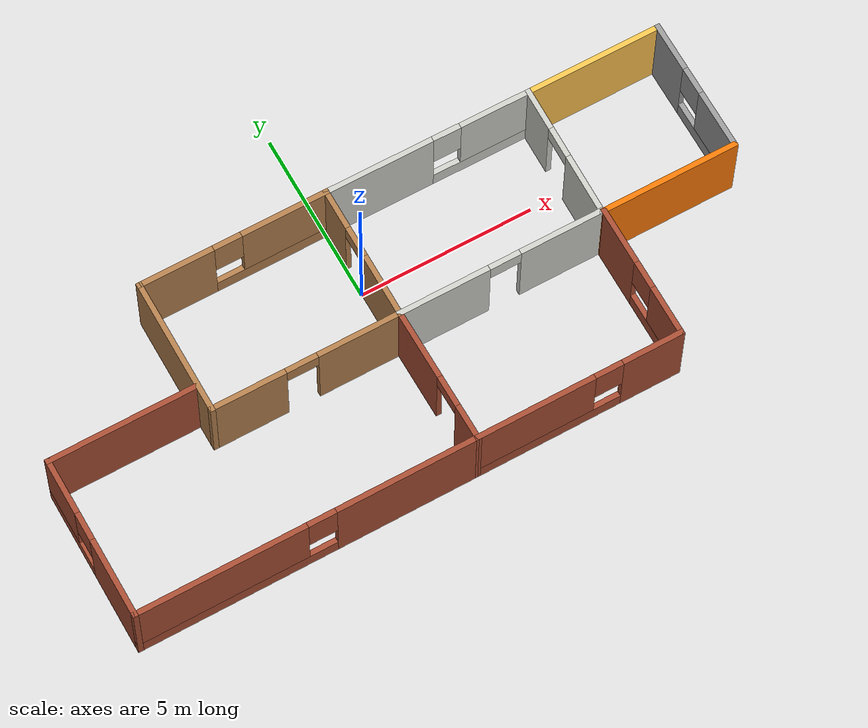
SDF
<?xml version='1.0'?>
<sdf version='1.6'>
  <model name='Untitled'>
    <pose frame=''>0.1832 -1.88357 0 0 -0 0</pose>
    <link name='Wall_0'>
      <collision name='Wall_0_Collision'>
        <geometry>
          <box>
            <size>4 0.15 2.5</size>
          </box>
        </geometry>
        <pose frame=''>0 0 1.25 0 -0 0</pose>
      </collision>
      <visual name='Wall_0_Visual'>
        <pose frame=''>0 0 1.25 0 -0 0</pose>
        <geometry>
          <box>
            <size>4 0.15 2.5</size>
          </box>
        </geometry>
        <material>
          <script>
            <uri>file://media/materials/scripts/gazebo.material</uri>
            <name>Gazebo/Wood</name>
          </script>
          <ambient>1 1 1 1</ambient>
        </material>
        <meta>
          <layer>0</layer>
        </meta>
      </visual>
      <pose frame=''>-5.4532 1.93857 0 0 -0 1.5708</pose>
    </link>
    <link name='Wall_1'>
      <pose frame=''>-2.7782 3.86357 0 0 -0 0</pose>
      <visual name='Wall_1_Visual_0'>
        <pose frame=''>-1.66344 0 1.25 0 -0 0</pose>
        <geometry>
          <box>
            <size>2.17311 0.15 2.5</size>
          </box>
        </geometry>
        <material>
          <script>
            <uri>file://media/materials/scripts/gazebo.material</uri>
            <name>Gazebo/Wood</name>
          </script>
          <ambient>1 1 1 1</ambient>
        </material>
        <meta>
          <layer>0</layer>
        </meta>
      </visual>
      <collision name='Wall_1_Collision_0'>
        <geometry>
          <box>
            <size>2.17311 0.15 2.5</size>
          </box>
        </geometry>
        <pose frame=''>-1.66344 0 1.25 0 -0 0</pose>
      </collision>
      <visual name='Wall_1_Visual_1'>
        <pose frame=''>1.08656 0 0.25 0 -0 0</pose>
        <geometry>
          <box>
            <size>3.32689 0.15 0.5</size>
          </box>
        </geometry>
        <material>
          <script>
            <uri>file://media/materials/scripts/gazebo.material</uri>
            <name>Gazebo/Wood</name>
          </script>
          <ambient>1 1 1 1</ambient>
        </material>
        <meta>
          <layer>0</layer>
        </meta>
      </visual>
      <collision name='Wall_1_Collision_1'>
        <geometry>
          <box>
            <size>3.32689 0.15 0.5</size>
          </box>
        </geometry>
        <pose frame=''>1.08656 0 0.25 0 -0 0</pose>
      </collision>
      <visual name='Wall_1_Visual_2'>
        <pose frame=''>1.48656 0 1.5 0 -0 0</pose>
        <geometry>
          <box>
            <size>2.52689 0.15 2</size>
          </box>
        </geometry>
        <material>
          <script>
            <uri>file://media/materials/scripts/gazebo.material</uri>
            <name>Gazebo/Wood</name>
          </script>
          <ambient>1 1 1 1</ambient>
        </material>
        <meta>
          <layer>0</layer>
        </meta>
      </visual>
      <collision name='Wall_1_Collision_2'>
        <geometry>
          <box>
            <size>2.52689 0.15 2</size>
          </box>
        </geometry>
        <pose frame=''>1.48656 0 1.5 0 -0 0</pose>
      </collision>
      <visual name='Wall_1_Visual_3'>
        <pose frame=''>-0.176886 0 1.9 0 -0 0</pose>
        <geometry>
          <box>
            <size>0.8 0.15 1.2</size>
          </box>
        </geometry>
        <material>
          <script>
            <uri>file://media/materials/scripts/gazebo.material</uri>
            <name>Gazebo/Wood</name>
          </script>
          <ambient>1 1 1 1</ambient>
        </material>
        <meta>
          <layer>0</layer>
        </meta>
      </visual>
      <collision name='Wall_1_Collision_3'>
        <geometry>
          <box>
            <size>0.8 0.15 1.2</size>
          </box>
        </geometry>
        <pose frame=''>-0.176886 0 1.9 0 -0 0</pose>
      </collision>
    </link>
    <link name='Wall_13'>
      <pose frame=''>2.8218 0.013569 0 0 -0 0</pose>
      <visual name='Wall_13_Visual_0'>
        <pose frame=''>-1.67586 0 1.25 0 -0 0</pose>
        <geometry>
          <box>
            <size>2.64829 0.15 2.5</size>
          </box>
        </geometry>
        <material>
          <script>
            <uri>file://media/materials/scripts/gazebo.material</uri>
            <name>Gazebo/CeilingTiled</name>
          </script>
          <ambient>0.996078 0.47451 0.0196078 1</ambient>
        </material>
        <meta>
          <layer>0</layer>
        </meta>
      </visual>
      <collision name='Wall_13_Collision_0'>
        <geometry>
          <box>
            <size>2.64829 0.15 2.5</size>
          </box>
        </geometry>
        <pose frame=''>-1.67586 0 1.25 0 -0 0</pose>
      </collision>
      <visual name='Wall_13_Visual_1'>
        <pose frame=''>1.77414 0 1.25 0 -0 0</pose>
        <geometry>
          <box>
            <size>2.45171 0.15 2.5</size>
          </box>
        </geometry>
        <material>
          <script>
            <uri>file://media/materials/scripts/gazebo.material</uri>
            <name>Gazebo/CeilingTiled</name>
          </script>
          <ambient>0.996078 0.47451 0.0196078 1</ambient>
        </material>
        <meta>
          <layer>0</layer>
        </meta>
      </visual>
      <collision name='Wall_13_Collision_1'>
        <geometry>
          <box>
            <size>2.45171 0.15 2.5</size>
          </box>
        </geometry>
        <pose frame=''>1.77414 0 1.25 0 -0 0</pose>
      </collision>
      <visual name='Wall_13_Visual_2'>
        <pose frame=''>0.098288 0 2.25 0 -0 0</pose>
        <geometry>
          <box>
            <size>0.9 0.15 0.5</size>
          </box>
        </geometry>
        <material>
          <script>
            <uri>file://media/materials/scripts/gazebo.material</uri>
            <name>Gazebo/CeilingTiled</name>
          </script>
          <ambient>0.996078 0.47451 0.0196078 1</ambient>
        </material>
        <meta>
          <layer>0</layer>
        </meta>
      </visual>
      <collision name='Wall_13_Collision_2'>
        <geometry>
          <box>
            <size>0.9 0.15 0.5</size>
          </box>
        </geometry>
        <pose frame=''>0.098288 0 2.25 0 -0 0</pose>
      </collision>
    </link>
    <link name='Wall_14'>
      <pose frame=''>5.7734 1.92534 0 0 -0 1.55688</pose>
      <visual name='Wall_14_Visual_0'>
        <pose frame=''>-1.0801 0 1.25 0 -0 0</pose>
        <geometry>
          <box>
            <size>1.81371 0.15 2.5</size>
          </box>
        </geometry>
        <material>
          <script>
            <uri>file://media/materials/scripts/gazebo.material</uri>
            <name>Gazebo/CeilingTiled</name>
          </script>
          <ambient>1 1 1 1</ambient>
        </material>
        <meta>
          <layer>0</layer>
        </meta>
      </visual>
      <collision name='Wall_14_Collision_0'>
        <geometry>
          <box>
            <size>1.81371 0.15 2.5</size>
          </box>
        </geometry>
        <pose frame=''>-1.0801 0 1.25 0 -0 0</pose>
      </collision>
      <visual name='Wall_14_Visual_1'>
        <pose frame=''>1.35686 0 1.25 0 -0 0</pose>
        <geometry>
          <box>
            <size>1.26021 0.15 2.5</size>
          </box>
        </geometry>
        <material>
          <script>
            <uri>file://media/materials/scripts/gazebo.material</uri>
            <name>Gazebo/CeilingTiled</name>
          </script>
          <ambient>1 1 1 1</ambient>
        </material>
        <meta>
          <layer>0</layer>
        </meta>
      </visual>
      <collision name='Wall_14_Collision_1'>
        <geometry>
          <box>
            <size>1.26021 0.15 2.5</size>
          </box>
        </geometry>
        <pose frame=''>1.35686 0 1.25 0 -0 0</pose>
      </collision>
      <visual name='Wall_14_Visual_2'>
        <pose frame=''>0.276753 0 2.25 0 -0 0</pose>
        <geometry>
          <box>
            <size>0.9 0.15 0.5</size>
          </box>
        </geometry>
        <material>
          <script>
            <uri>file://media/materials/scripts/gazebo.material</uri>
            <name>Gazebo/CeilingTiled</name>
          </script>
          <ambient>1 1 1 1</ambient>
        </material>
        <meta>
          <layer>0</layer>
        </meta>
      </visual>
      <collision name='Wall_14_Collision_2'>
        <geometry>
          <box>
            <size>0.9 0.15 0.5</size>
          </box>
        </geometry>
        <pose frame=''>0.276753 0 2.25 0 -0 0</pose>
      </collision>
    </link>
    <link name='Wall_15'>
      <collision name='Wall_15_Collision'>
        <geometry>
          <box>
            <size>4 0.15 2.5</size>
          </box>
        </geometry>
        <pose frame=''>0 0 1.25 0 -0 0</pose>
      </collision>
      <visual name='Wall_15_Visual'>
        <pose frame=''>0 0 1.25 0 -0 0</pose>
        <geometry>
          <box>
            <size>4 0.15 2.5</size>
          </box>
        </geometry>
        <material>
          <script>
            <uri>file://media/materials/scripts/gazebo.material</uri>
            <name>Gazebo/Grey</name>
          </script>
          <ambient>1 0.764706 0.305882 1</ambient>
        </material>
        <meta>
          <layer>0</layer>
        </meta>
      </visual>
      <pose frame=''>7.725 3.83712 0 0 -0 0</pose>
    </link>
    <link name='Wall_16'>
      <pose frame=''>9.65 1.91212 0 0 0 -1.5708</pose>
      <visual name='Wall_16_Visual_0'>
        <pose frame=''>-1.27486 0 1.25 0 -0 0</pose>
        <geometry>
          <box>
            <size>1.45027 0.15 2.5</size>
          </box>
        </geometry>
        <material>
          <script>
            <uri>file://media/materials/scripts/gazebo.material</uri>
            <name>Gazebo/Grey</name>
          </script>
          <ambient>1 1 1 1</ambient>
        </material>
        <meta>
          <layer>0</layer>
        </meta>
      </visual>
      <collision name='Wall_16_Collision_0'>
        <geometry>
          <box>
            <size>1.45027 0.15 2.5</size>
          </box>
        </geometry>
        <pose frame=''>-1.27486 0 1.25 0 -0 0</pose>
      </collision>
      <visual name='Wall_16_Visual_1'>
        <pose frame=''>0.725137 0 0.25 0 -0 0</pose>
        <geometry>
          <box>
            <size>2.54973 0.15 0.5</size>
          </box>
        </geometry>
        <material>
          <script>
            <uri>file://media/materials/scripts/gazebo.material</uri>
            <name>Gazebo/Grey</name>
          </script>
          <ambient>1 1 1 1</ambient>
        </material>
        <meta>
          <layer>0</layer>
        </meta>
      </visual>
      <collision name='Wall_16_Collision_1'>
        <geometry>
          <box>
            <size>2.54973 0.15 0.5</size>
          </box>
        </geometry>
        <pose frame=''>0.725137 0 0.25 0 -0 0</pose>
      </collision>
      <visual name='Wall_16_Visual_2'>
        <pose frame=''>1.12514 0 1.5 0 -0 0</pose>
        <geometry>
          <box>
            <size>1.74973 0.15 2</size>
          </box>
        </geometry>
        <material>
          <script>
            <uri>file://media/materials/scripts/gazebo.material</uri>
            <name>Gazebo/Grey</name>
          </script>
          <ambient>1 1 1 1</ambient>
        </material>
        <meta>
          <layer>0</layer>
        </meta>
      </visual>
      <collision name='Wall_16_Collision_2'>
        <geometry>
          <box>
            <size>1.74973 0.15 2</size>
          </box>
        </geometry>
        <pose frame=''>1.12514 0 1.5 0 -0 0</pose>
      </collision>
      <visual name='Wall_16_Visual_3'>
        <pose frame=''>-0.149727 0 1.9 0 -0 0</pose>
        <geometry>
          <box>
            <size>0.8 0.15 1.2</size>
          </box>
        </geometry>
        <material>
          <script>
            <uri>file://media/materials/scripts/gazebo.material</uri>
            <name>Gazebo/Grey</name>
          </script>
          <ambient>1 1 1 1</ambient>
        </material>
        <meta>
          <layer>0</layer>
        </meta>
      </visual>
      <collision name='Wall_16_Collision_3'>
        <geometry>
          <box>
            <size>0.8 0.15 1.2</size>
          </box>
        </geometry>
        <pose frame=''>-0.149727 0 1.9 0 -0 0</pose>
      </collision>
    </link>
    <link name='Wall_17'>
      <collision name='Wall_17_Collision'>
        <geometry>
          <box>
            <size>4 0.15 2.5</size>
          </box>
        </geometry>
        <pose frame=''>0 0 1.25 0 -0 0</pose>
      </collision>
      <visual name='Wall_17_Visual'>
        <pose frame=''>0 0 1.25 0 -0 0</pose>
        <geometry>
          <box>
            <size>4 0.15 2.5</size>
          </box>
        </geometry>
        <material>
          <script>
            <uri>file://media/materials/scripts/gazebo.material</uri>
            <name>Gazebo/Grey</name>
          </script>
          <ambient>0.996078 0.47451 0.0196078 1</ambient>
        </material>
        <meta>
          <layer>0</layer>
        </meta>
      </visual>
      <pose frame=''>7.725 -0.012882 0 0 -0 3.14159</pose>
    </link>
    <link name='Wall_18'>
      <pose frame=''>5.8 -1.93788 0 0 0 -1.5708</pose>
      <visual name='Wall_18_Visual_0'>
        <pose frame=''>-1.14124 0 1.25 0 -0 0</pose>
        <geometry>
          <box>
            <size>1.71752 0.15 2.5</size>
          </box>
        </geometry>
        <material>
          <script>
            <uri>file://media/materials/scripts/gazebo.material</uri>
            <name>Gazebo/Bricks</name>
          </script>
          <ambient>1 1 1 1</ambient>
        </material>
        <meta>
          <layer>0</layer>
        </meta>
      </visual>
      <collision name='Wall_18_Collision_0'>
        <geometry>
          <box>
            <size>1.71752 0.15 2.5</size>
          </box>
        </geometry>
        <pose frame=''>-1.14124 0 1.25 0 -0 0</pose>
      </collision>
      <visual name='Wall_18_Visual_1'>
        <pose frame=''>0.858761 0 0.25 0 -0 0</pose>
        <geometry>
          <box>
            <size>2.28248 0.15 0.5</size>
          </box>
        </geometry>
        <material>
          <script>
            <uri>file://media/materials/scripts/gazebo.material</uri>
            <name>Gazebo/Bricks</name>
          </script>
          <ambient>1 1 1 1</ambient>
        </material>
        <meta>
          <layer>0</layer>
        </meta>
      </visual>
      <collision name='Wall_18_Collision_1'>
        <geometry>
          <box>
            <size>2.28248 0.15 0.5</size>
          </box>
        </geometry>
        <pose frame=''>0.858761 0 0.25 0 -0 0</pose>
      </collision>
      <visual name='Wall_18_Visual_2'>
        <pose frame=''>1.25876 0 1.5 0 -0 0</pose>
        <geometry>
          <box>
            <size>1.48248 0.15 2</size>
          </box>
        </geometry>
        <material>
          <script>
            <uri>file://media/materials/scripts/gazebo.material</uri>
            <name>Gazebo/Bricks</name>
          </script>
          <ambient>1 1 1 1</ambient>
        </material>
        <meta>
          <layer>0</layer>
        </meta>
      </visual>
      <collision name='Wall_18_Collision_2'>
        <geometry>
          <box>
            <size>1.48248 0.15 2</size>
          </box>
        </geometry>
        <pose frame=''>1.25876 0 1.5 0 -0 0</pose>
      </collision>
      <visual name='Wall_18_Visual_3'>
        <pose frame=''>0.117521 0 1.9 0 -0 0</pose>
        <geometry>
          <box>
            <size>0.8 0.15 1.2</size>
          </box>
        </geometry>
        <material>
          <script>
            <uri>file://media/materials/scripts/gazebo.material</uri>
            <name>Gazebo/Bricks</name>
          </script>
          <ambient>1 1 1 1</ambient>
        </material>
        <meta>
          <layer>0</layer>
        </meta>
      </visual>
      <collision name='Wall_18_Collision_3'>
        <geometry>
          <box>
            <size>0.8 0.15 1.2</size>
          </box>
        </geometry>
        <pose frame=''>0.117521 0 1.9 0 -0 0</pose>
      </collision>
    </link>
    <link name='Wall_19'>
      <pose frame=''>2.875 -3.86288 0 0 -0 3.14159</pose>
      <visual name='Wall_19_Visual_0'>
        <pose frame=''>-2.11576 0 1.25 0 -0 0</pose>
        <geometry>
          <box>
            <size>1.76847 0.15 2.5</size>
          </box>
        </geometry>
        <material>
          <script>
            <uri>file://media/materials/scripts/gazebo.material</uri>
            <name>Gazebo/Bricks</name>
          </script>
          <ambient>1 1 1 1</ambient>
        </material>
        <meta>
          <layer>0</layer>
        </meta>
      </visual>
      <collision name='Wall_19_Collision_0'>
        <geometry>
          <box>
            <size>1.76847 0.15 2.5</size>
          </box>
        </geometry>
        <pose frame=''>-2.11576 0 1.25 0 -0 0</pose>
      </collision>
      <visual name='Wall_19_Visual_1'>
        <pose frame=''>0.884236 0 0.25 0 -0 0</pose>
        <geometry>
          <box>
            <size>4.23153 0.15 0.5</size>
          </box>
        </geometry>
        <material>
          <script>
            <uri>file://media/materials/scripts/gazebo.material</uri>
            <name>Gazebo/Bricks</name>
          </script>
          <ambient>1 1 1 1</ambient>
        </material>
        <meta>
          <layer>0</layer>
        </meta>
      </visual>
      <collision name='Wall_19_Collision_1'>
        <geometry>
          <box>
            <size>4.23153 0.15 0.5</size>
          </box>
        </geometry>
        <pose frame=''>0.884236 0 0.25 0 -0 0</pose>
      </collision>
      <visual name='Wall_19_Visual_2'>
        <pose frame=''>1.28424 0 1.5 0 -0 0</pose>
        <geometry>
          <box>
            <size>3.43153 0.15 2</size>
          </box>
        </geometry>
        <material>
          <script>
            <uri>file://media/materials/scripts/gazebo.material</uri>
            <name>Gazebo/Bricks</name>
          </script>
          <ambient>1 1 1 1</ambient>
        </material>
        <meta>
          <layer>0</layer>
        </meta>
      </visual>
      <collision name='Wall_19_Collision_2'>
        <geometry>
          <box>
            <size>3.43153 0.15 2</size>
          </box>
        </geometry>
        <pose frame=''>1.28424 0 1.5 0 -0 0</pose>
      </collision>
      <visual name='Wall_19_Visual_3'>
        <pose frame=''>-0.831528 0 1.9 0 -0 0</pose>
        <geometry>
          <box>
            <size>0.8 0.15 1.2</size>
          </box>
        </geometry>
        <material>
          <script>
            <uri>file://media/materials/scripts/gazebo.material</uri>
            <name>Gazebo/Bricks</name>
          </script>
          <ambient>1 1 1 1</ambient>
        </material>
        <meta>
          <layer>0</layer>
        </meta>
      </visual>
      <collision name='Wall_19_Collision_3'>
        <geometry>
          <box>
            <size>0.8 0.15 1.2</size>
          </box>
        </geometry>
        <pose frame=''>-0.831528 0 1.9 0 -0 0</pose>
      </collision>
    </link>
    <link name='Wall_2'>
      <pose frame=''>-0.1032 1.93857 0 0 0 -1.5708</pose>
      <visual name='Wall_2_Visual_0'>
        <pose frame=''>-1.39073 0 1.25 0 -0 0</pose>
        <geometry>
          <box>
            <size>1.21855 0.15 2.5</size>
          </box>
        </geometry>
        <material>
          <script>
            <uri>file://media/materials/scripts/gazebo.material</uri>
            <name>Gazebo/Wood</name>
          </script>
          <ambient>1 1 1 1</ambient>
        </material>
        <meta>
          <layer>0</layer>
        </meta>
      </visual>
      <collision name='Wall_2_Collision_0'>
        <geometry>
          <box>
            <size>1.21855 0.15 2.5</size>
          </box>
        </geometry>
        <pose frame=''>-1.39073 0 1.25 0 -0 0</pose>
      </collision>
      <visual name='Wall_2_Visual_1'>
        <pose frame=''>1.05927 0 1.25 0 -0 0</pose>
        <geometry>
          <box>
            <size>1.88145 0.15 2.5</size>
          </box>
        </geometry>
        <material>
          <script>
            <uri>file://media/materials/scripts/gazebo.material</uri>
            <name>Gazebo/Wood</name>
          </script>
          <ambient>1 1 1 1</ambient>
        </material>
        <meta>
          <layer>0</layer>
        </meta>
      </visual>
      <collision name='Wall_2_Collision_1'>
        <geometry>
          <box>
            <size>1.88145 0.15 2.5</size>
          </box>
        </geometry>
        <pose frame=''>1.05927 0 1.25 0 -0 0</pose>
      </collision>
      <visual name='Wall_2_Visual_2'>
        <pose frame=''>-0.331452 0 2.25 0 -0 0</pose>
        <geometry>
          <box>
            <size>0.9 0.15 0.5</size>
          </box>
        </geometry>
        <material>
          <script>
            <uri>file://media/materials/scripts/gazebo.material</uri>
            <name>Gazebo/Wood</name>
          </script>
          <ambient>1 1 1 1</ambient>
        </material>
        <meta>
          <layer>0</layer>
        </meta>
      </visual>
      <collision name='Wall_2_Collision_2'>
        <geometry>
          <box>
            <size>0.9 0.15 0.5</size>
          </box>
        </geometry>
        <pose frame=''>-0.331452 0 2.25 0 -0 0</pose>
      </collision>
    </link>
    <link name='Wall_20'>
      <pose frame=''>-0.0766 -1.92466 0 0 -0 1.58452</pose>
      <visual name='Wall_20_Visual_0'>
        <pose frame=''>-1.48298 0 1.25 0 -0 0</pose>
        <geometry>
          <box>
            <size>1.06086 0.15 2.5</size>
          </box>
        </geometry>
        <material>
          <script>
            <uri>file://media/materials/scripts/gazebo.material</uri>
            <name>Gazebo/Bricks</name>
          </script>
          <ambient>1 1 1 1</ambient>
        </material>
        <meta>
          <layer>0</layer>
        </meta>
      </visual>
      <collision name='Wall_20_Collision_0'>
        <geometry>
          <box>
            <size>1.06086 0.15 2.5</size>
          </box>
        </geometry>
        <pose frame=''>-1.48298 0 1.25 0 -0 0</pose>
      </collision>
      <visual name='Wall_20_Visual_1'>
        <pose frame=''>0.980428 0 1.25 0 -0 0</pose>
        <geometry>
          <box>
            <size>2.06596 0.15 2.5</size>
          </box>
        </geometry>
        <material>
          <script>
            <uri>file://media/materials/scripts/gazebo.material</uri>
            <name>Gazebo/Bricks</name>
          </script>
          <ambient>1 1 1 1</ambient>
        </material>
        <meta>
          <layer>0</layer>
        </meta>
      </visual>
      <collision name='Wall_20_Collision_1'>
        <geometry>
          <box>
            <size>2.06596 0.15 2.5</size>
          </box>
        </geometry>
        <pose frame=''>0.980428 0 1.25 0 -0 0</pose>
      </collision>
      <visual name='Wall_20_Visual_2'>
        <pose frame=''>-0.502552 0 2.25 0 -0 0</pose>
        <geometry>
          <box>
            <size>0.9 0.15 0.5</size>
          </box>
        </geometry>
        <material>
          <script>
            <uri>file://media/materials/scripts/gazebo.material</uri>
            <name>Gazebo/Bricks</name>
          </script>
          <ambient>1 1 1 1</ambient>
        </material>
        <meta>
          <layer>0</layer>
        </meta>
      </visual>
      <collision name='Wall_20_Collision_2'>
        <geometry>
          <box>
            <size>0.9 0.15 0.5</size>
          </box>
        </geometry>
        <pose frame=''>-0.502552 0 2.25 0 -0 0</pose>
      </collision>
    </link>
    <link name='Wall_22'>
      <pose frame=''>-4.85 -3.86288 0 0 -0 3.14159</pose>
      <visual name='Wall_22_Visual_0'>
        <pose frame=''>-2.83321 0 1.25 0 -0 0</pose>
        <geometry>
          <box>
            <size>4.08358 0.15 2.5</size>
          </box>
        </geometry>
        <material>
          <script>
            <uri>file://media/materials/scripts/gazebo.material</uri>
            <name>Gazebo/Bricks</name>
          </script>
          <ambient>0.996078 0.47451 0.0196078 1</ambient>
        </material>
        <meta>
          <layer>0</layer>
        </meta>
      </visual>
      <collision name='Wall_22_Collision_0'>
        <geometry>
          <box>
            <size>4.08358 0.15 2.5</size>
          </box>
        </geometry>
        <pose frame=''>-2.83321 0 1.25 0 -0 0</pose>
      </collision>
      <visual name='Wall_22_Visual_1'>
        <pose frame=''>2.04179 0 0.25 0 -0 0</pose>
        <geometry>
          <box>
            <size>5.66642 0.15 0.5</size>
          </box>
        </geometry>
        <material>
          <script>
            <uri>file://media/materials/scripts/gazebo.material</uri>
            <name>Gazebo/Bricks</name>
          </script>
          <ambient>0.996078 0.47451 0.0196078 1</ambient>
        </material>
        <meta>
          <layer>0</layer>
        </meta>
      </visual>
      <collision name='Wall_22_Collision_1'>
        <geometry>
          <box>
            <size>5.66642 0.15 0.5</size>
          </box>
        </geometry>
        <pose frame=''>2.04179 0 0.25 0 -0 0</pose>
      </collision>
      <visual name='Wall_22_Visual_2'>
        <pose frame=''>2.44179 0 1.5 0 -0 0</pose>
        <geometry>
          <box>
            <size>4.86642 0.15 2</size>
          </box>
        </geometry>
        <material>
          <script>
            <uri>file://media/materials/scripts/gazebo.material</uri>
            <name>Gazebo/Bricks</name>
          </script>
          <ambient>0.996078 0.47451 0.0196078 1</ambient>
        </material>
        <meta>
          <layer>0</layer>
        </meta>
      </visual>
      <collision name='Wall_22_Collision_2'>
        <geometry>
          <box>
            <size>4.86642 0.15 2</size>
          </box>
        </geometry>
        <pose frame=''>2.44179 0 1.5 0 -0 0</pose>
      </collision>
      <visual name='Wall_22_Visual_3'>
        <pose frame=''>-0.391424 0 1.9 0 -0 0</pose>
        <geometry>
          <box>
            <size>0.8 0.15 1.2</size>
          </box>
        </geometry>
        <material>
          <script>
            <uri>file://media/materials/scripts/gazebo.material</uri>
            <name>Gazebo/Bricks</name>
          </script>
          <ambient>0.996078 0.47451 0.0196078 1</ambient>
        </material>
        <meta>
          <layer>0</layer>
        </meta>
      </visual>
      <collision name='Wall_22_Collision_3'>
        <geometry>
          <box>
            <size>0.8 0.15 1.2</size>
          </box>
        </geometry>
        <pose frame=''>-0.391424 0 1.9 0 -0 0</pose>
      </collision>
    </link>
    <link name='Wall_23'>
      <pose frame=''>-9.65 -1.56288 0 0 -0 1.5708</pose>
      <visual name='Wall_23_Visual_0'>
        <pose frame=''>-1.21741 0 1.25 0 -0 0</pose>
        <geometry>
          <box>
            <size>2.31518 0.15 2.5</size>
          </box>
        </geometry>
        <material>
          <script>
            <uri>file://media/materials/scripts/gazebo.material</uri>
            <name>Gazebo/Bricks</name>
          </script>
          <ambient>1 1 1 1</ambient>
        </material>
        <meta>
          <layer>0</layer>
        </meta>
      </visual>
      <collision name='Wall_23_Collision_0'>
        <geometry>
          <box>
            <size>2.31518 0.15 2.5</size>
          </box>
        </geometry>
        <pose frame=''>-1.21741 0 1.25 0 -0 0</pose>
      </collision>
      <visual name='Wall_23_Visual_1'>
        <pose frame=''>1.15759 0 0.25 0 -0 0</pose>
        <geometry>
          <box>
            <size>2.43482 0.15 0.5</size>
          </box>
        </geometry>
        <material>
          <script>
            <uri>file://media/materials/scripts/gazebo.material</uri>
            <name>Gazebo/Bricks</name>
          </script>
          <ambient>1 1 1 1</ambient>
        </material>
        <meta>
          <layer>0</layer>
        </meta>
      </visual>
      <collision name='Wall_23_Collision_1'>
        <geometry>
          <box>
            <size>2.43482 0.15 0.5</size>
          </box>
        </geometry>
        <pose frame=''>1.15759 0 0.25 0 -0 0</pose>
      </collision>
      <visual name='Wall_23_Visual_2'>
        <pose frame=''>1.55759 0 1.5 0 -0 0</pose>
        <geometry>
          <box>
            <size>1.63482 0.15 2</size>
          </box>
        </geometry>
        <material>
          <script>
            <uri>file://media/materials/scripts/gazebo.material</uri>
            <name>Gazebo/Bricks</name>
          </script>
          <ambient>1 1 1 1</ambient>
        </material>
        <meta>
          <layer>0</layer>
        </meta>
      </visual>
      <collision name='Wall_23_Collision_2'>
        <geometry>
          <box>
            <size>1.63482 0.15 2</size>
          </box>
        </geometry>
        <pose frame=''>1.55759 0 1.5 0 -0 0</pose>
      </collision>
      <visual name='Wall_23_Visual_3'>
        <pose frame=''>0.340181 0 1.9 0 -0 0</pose>
        <geometry>
          <box>
            <size>0.8 0.15 1.2</size>
          </box>
        </geometry>
        <material>
          <script>
            <uri>file://media/materials/scripts/gazebo.material</uri>
            <name>Gazebo/Bricks</name>
          </script>
          <ambient>1 1 1 1</ambient>
        </material>
        <meta>
          <layer>0</layer>
        </meta>
      </visual>
      <collision name='Wall_23_Collision_3'>
        <geometry>
          <box>
            <size>0.8 0.15 1.2</size>
          </box>
        </geometry>
        <pose frame=''>0.340181 0 1.9 0 -0 0</pose>
      </collision>
    </link>
    <link name='Wall_24'>
      <collision name='Wall_24_Collision'>
        <geometry>
          <box>
            <size>4.25 0.15 2.5</size>
          </box>
        </geometry>
        <pose frame=''>0 0 1.25 0 -0 0</pose>
      </collision>
      <visual name='Wall_24_Visual'>
        <pose frame=''>0 0 1.25 0 -0 0</pose>
        <geometry>
          <box>
            <size>4.25 0.15 2.5</size>
          </box>
        </geometry>
        <material>
          <script>
            <uri>file://media/materials/scripts/gazebo.material</uri>
            <name>Gazebo/Bricks</name>
          </script>
          <ambient>0.996078 0.47451 0.0196078 1</ambient>
        </material>
        <meta>
          <layer>0</layer>
        </meta>
      </visual>
      <pose frame=''>-7.6 0.737118 0 0 -0 0</pose>
    </link>
    <link name='Wall_3'>
      <pose frame=''>-2.7782 0.013569 0 0 -0 3.14159</pose>
      <visual name='Wall_3_Visual_0'>
        <pose frame=''>-1.53469 0 1.25 0 -0 0</pose>
        <geometry>
          <box>
            <size>2.43063 0.15 2.5</size>
          </box>
        </geometry>
        <material>
          <script>
            <uri>file://media/materials/scripts/gazebo.material</uri>
            <name>Gazebo/Wood</name>
          </script>
          <ambient>1 1 1 1</ambient>
        </material>
        <meta>
          <layer>0</layer>
        </meta>
      </visual>
      <collision name='Wall_3_Collision_0'>
        <geometry>
          <box>
            <size>2.43063 0.15 2.5</size>
          </box>
        </geometry>
        <pose frame=''>-1.53469 0 1.25 0 -0 0</pose>
      </collision>
      <visual name='Wall_3_Visual_1'>
        <pose frame=''>1.66531 0 1.25 0 -0 0</pose>
        <geometry>
          <box>
            <size>2.16938 0.15 2.5</size>
          </box>
        </geometry>
        <material>
          <script>
            <uri>file://media/materials/scripts/gazebo.material</uri>
            <name>Gazebo/Wood</name>
          </script>
          <ambient>1 1 1 1</ambient>
        </material>
        <meta>
          <layer>0</layer>
        </meta>
      </visual>
      <collision name='Wall_3_Collision_1'>
        <geometry>
          <box>
            <size>2.16938 0.15 2.5</size>
          </box>
        </geometry>
        <pose frame=''>1.66531 0 1.25 0 -0 0</pose>
      </collision>
      <visual name='Wall_3_Visual_2'>
        <pose frame=''>0.130625 0 2.25 0 -0 0</pose>
        <geometry>
          <box>
            <size>0.9 0.15 0.5</size>
          </box>
        </geometry>
        <material>
          <script>
            <uri>file://media/materials/scripts/gazebo.material</uri>
            <name>Gazebo/Wood</name>
          </script>
          <ambient>1 1 1 1</ambient>
        </material>
        <meta>
          <layer>0</layer>
        </meta>
      </visual>
      <collision name='Wall_3_Collision_2'>
        <geometry>
          <box>
            <size>0.9 0.15 0.5</size>
          </box>
        </geometry>
        <pose frame=''>0.130625 0 2.25 0 -0 0</pose>
      </collision>
    </link>
    <link name='Wall_9'>
      <pose frame=''>2.8484 3.85034 0 0 0 -0.004481</pose>
      <visual name='Wall_9_Visual_0'>
        <pose frame=''>-1.44634 0 1.25 0 -0 0</pose>
        <geometry>
          <box>
            <size>3.16051 0.15 2.5</size>
          </box>
        </geometry>
        <material>
          <script>
            <uri>file://media/materials/scripts/gazebo.material</uri>
            <name>Gazebo/CeilingTiled</name>
          </script>
          <ambient>0.996078 0.47451 0.0196078 1</ambient>
        </material>
        <meta>
          <layer>0</layer>
        </meta>
      </visual>
      <collision name='Wall_9_Collision_0'>
        <geometry>
          <box>
            <size>3.16051 0.15 2.5</size>
          </box>
        </geometry>
        <pose frame=''>-1.44634 0 1.25 0 -0 0</pose>
      </collision>
      <visual name='Wall_9_Visual_1'>
        <pose frame=''>1.58026 0 0.25 0 -0 0</pose>
        <geometry>
          <box>
            <size>2.89269 0.15 0.5</size>
          </box>
        </geometry>
        <material>
          <script>
            <uri>file://media/materials/scripts/gazebo.material</uri>
            <name>Gazebo/CeilingTiled</name>
          </script>
          <ambient>0.996078 0.47451 0.0196078 1</ambient>
        </material>
        <meta>
          <layer>0</layer>
        </meta>
      </visual>
      <collision name='Wall_9_Collision_1'>
        <geometry>
          <box>
            <size>2.89269 0.15 0.5</size>
          </box>
        </geometry>
        <pose frame=''>1.58026 0 0.25 0 -0 0</pose>
      </collision>
      <visual name='Wall_9_Visual_2'>
        <pose frame=''>1.98026 0 1.5 0 -0 0</pose>
        <geometry>
          <box>
            <size>2.09269 0.15 2</size>
          </box>
        </geometry>
        <material>
          <script>
            <uri>file://media/materials/scripts/gazebo.material</uri>
            <name>Gazebo/CeilingTiled</name>
          </script>
          <ambient>0.996078 0.47451 0.0196078 1</ambient>
        </material>
        <meta>
          <layer>0</layer>
        </meta>
      </visual>
      <collision name='Wall_9_Collision_2'>
        <geometry>
          <box>
            <size>2.09269 0.15 2</size>
          </box>
        </geometry>
        <pose frame=''>1.98026 0 1.5 0 -0 0</pose>
      </collision>
      <visual name='Wall_9_Visual_3'>
        <pose frame=''>0.533913 0 1.9 0 -0 0</pose>
        <geometry>
          <box>
            <size>0.8 0.15 1.2</size>
          </box>
        </geometry>
        <material>
          <script>
            <uri>file://media/materials/scripts/gazebo.material</uri>
            <name>Gazebo/CeilingTiled</name>
          </script>
          <ambient>0.996078 0.47451 0.0196078 1</ambient>
        </material>
        <meta>
          <layer>0</layer>
        </meta>
      </visual>
      <collision name='Wall_9_Collision_3'>
        <geometry>
          <box>
            <size>0.8 0.15 1.2</size>
          </box>
        </geometry>
        <pose frame=''>0.533913 0 1.9 0 -0 0</pose>
      </collision>
    </link>
    <static>1</static>
  </model>
</sdf>
